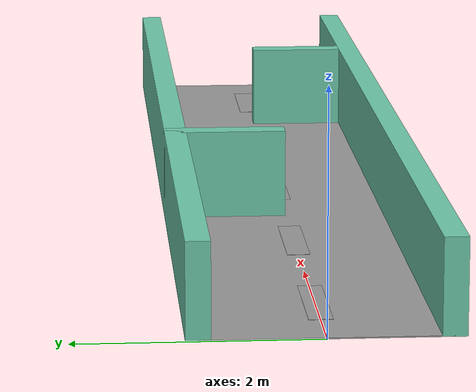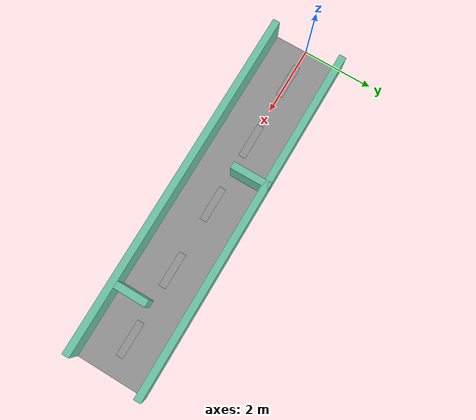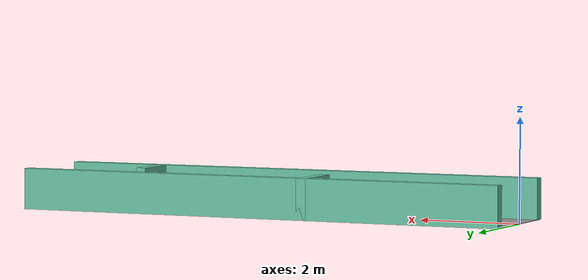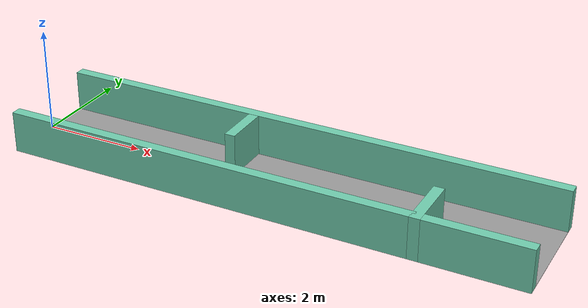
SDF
<?xml version='1.0'?>
<sdf version='1.7'>
  <model name='Race'>
    <pose>5 0 0 0 -0 0</pose>
    <link name='Wall_1'>
      <collision name='Wall_1_Collision'>
        <geometry>
          <box>
            <size>10 0.2 0.8</size>
          </box>
        </geometry>
        <pose>0 0 0.4 0 -0 0</pose>
      </collision>
      <visual name='Wall_1_Visual'>
        <pose>0 0 0.4 0 -0 0</pose>
        <geometry>
          <box>
            <size>10 0.2 0.8</size>
          </box>
        </geometry>
        <material>
          <script>
            <uri>file://media/materials/scripts/gazebo.material</uri>
            <name>Gazebo/Grey</name>
          </script>
          <ambient>0.435294 0.796078 0.67451 1</ambient>
        </material>
        <meta>
          <layer>0</layer>
        </meta>
      </visual>
      <pose>0 1 0 0 -0 0</pose>
    </link>
    <link name='Wall_11'>
      <collision name='Wall_11_Collision'>
        <geometry>
          <box>
            <size>1 0.2 0.013</size>
          </box>
        </geometry>
        <pose>0 0 0.0065 0 -0 0</pose>
      </collision>
      <visual name='Wall_11_Visual'>
        <pose>0 0 0.0065 0 -0 0</pose>
        <geometry>
          <box>
            <size>1 0.2 0.013</size>
          </box>
        </geometry>
        <material>
          <script>
            <uri>file://media/materials/scripts/gazebo.material</uri>
            <name>Gazebo/Grey</name>
          </script>
          <ambient>1 1 1 1</ambient>
        </material>
        <meta>
          <layer>0</layer>
        </meta>
      </visual>
      <pose>-4 0 0 0 -0 0</pose>
    </link>
    <link name='Wall_13'>
      <collision name='Wall_13_Collision'>
        <geometry>
          <box>
            <size>1 0.2 0.013</size>
          </box>
        </geometry>
        <pose>0 0 0.0065 0 -0 0</pose>
      </collision>
      <visual name='Wall_13_Visual'>
        <pose>0 0 0.0065 0 -0 0</pose>
        <geometry>
          <box>
            <size>1 0.2 0.013</size>
          </box>
        </geometry>
        <material>
          <script>
            <uri>file://media/materials/scripts/gazebo.material</uri>
            <name>Gazebo/Grey</name>
          </script>
          <ambient>1 1 1 1</ambient>
        </material>
        <meta>
          <layer>0</layer>
        </meta>
      </visual>
      <pose>-2 0 0 0 -0 0</pose>
    </link>
    <link name='Wall_15'>
      <collision name='Wall_15_Collision'>
        <geometry>
          <box>
            <size>1 0.2 0.013</size>
          </box>
        </geometry>
        <pose>0 0 0.0065 0 -0 0</pose>
      </collision>
      <visual name='Wall_15_Visual'>
        <pose>0 0 0.0065 0 -0 0</pose>
        <geometry>
          <box>
            <size>1 0.2 0.013</size>
          </box>
        </geometry>
        <material>
          <script>
            <uri>file://media/materials/scripts/gazebo.material</uri>
            <name>Gazebo/Grey</name>
          </script>
          <ambient>1 1 1 1</ambient>
        </material>
        <meta>
          <layer>0</layer>
        </meta>
      </visual>
      <pose>0 0 0 0 -0 0</pose>
    </link>
    <link name='Wall_17'>
      <collision name='Wall_17_Collision'>
        <geometry>
          <box>
            <size>1 0.2 0.013</size>
          </box>
        </geometry>
        <pose>0 0 0.0065 0 -0 0</pose>
      </collision>
      <visual name='Wall_17_Visual'>
        <pose>0 0 0.0065 0 -0 0</pose>
        <geometry>
          <box>
            <size>1 0.2 0.013</size>
          </box>
        </geometry>
        <material>
          <script>
            <uri>file://media/materials/scripts/gazebo.material</uri>
            <name>Gazebo/Grey</name>
          </script>
          <ambient>1 1 1 1</ambient>
        </material>
        <meta>
          <layer>0</layer>
        </meta>
      </visual>
      <pose>2 0 0 0 -0 0</pose>
    </link>
    <link name='Wall_19'>
      <collision name='Wall_19_Collision'>
        <geometry>
          <box>
            <size>1 0.2 0.013</size>
          </box>
        </geometry>
        <pose>0 0 0.0065 0 -0 0</pose>
      </collision>
      <visual name='Wall_19_Visual'>
        <pose>0 0 0.0065 0 -0 0</pose>
        <geometry>
          <box>
            <size>1 0.2 0.013</size>
          </box>
        </geometry>
        <material>
          <script>
            <uri>file://media/materials/scripts/gazebo.material</uri>
            <name>Gazebo/Grey</name>
          </script>
          <ambient>1 1 1 1</ambient>
        </material>
        <meta>
          <layer>0</layer>
        </meta>
      </visual>
      <pose>4 0 0 0 -0 0</pose>
    </link>
    <link name='Wall_3'>
      <collision name='Wall_3_Collision'>
        <geometry>
          <box>
            <size>10 0.2 0.8</size>
          </box>
        </geometry>
        <pose>0 0 0.4 0 -0 0</pose>
      </collision>
      <visual name='Wall_3_Visual'>
        <pose>0 0 0.4 0 -0 0</pose>
        <geometry>
          <box>
            <size>10 0.2 0.8</size>
          </box>
        </geometry>
        <material>
          <script>
            <uri>file://media/materials/scripts/gazebo.material</uri>
            <name>Gazebo/Grey</name>
          </script>
          <ambient>0.435294 0.796078 0.67451 1</ambient>
        </material>
        <meta>
          <layer>0</layer>
        </meta>
      </visual>
      <pose>0 -1 0 0 -0 0</pose>
    </link>
    <link name='Wall_5'>
      <collision name='Wall_5_Collision'>
        <geometry>
          <box>
            <size>1.1 0.2 0.8</size>
          </box>
        </geometry>
        <pose>0 0 0.4 0 -0 0</pose>
      </collision>
      <visual name='Wall_5_Visual'>
        <pose>0 0 0.4 0 -0 0</pose>
        <geometry>
          <box>
            <size>1.1 0.2 0.8</size>
          </box>
        </geometry>
        <material>
          <script>
            <uri>file://media/materials/scripts/gazebo.material</uri>
            <name>Gazebo/Grey</name>
          </script>
          <ambient>0.435294 0.796078 0.67451 1</ambient>
        </material>
        <meta>
          <layer>0</layer>
        </meta>
      </visual>
      <pose>-1 0.55 0 0 -0 -1.5708</pose>
    </link>
    <link name='Wall_7'>
      <collision name='Wall_7_Collision'>
        <geometry>
          <box>
            <size>1.1 0.2 0.8</size>
          </box>
        </geometry>
        <pose>0 0 0.4 0 -0 0</pose>
      </collision>
      <visual name='Wall_7_Visual'>
        <pose>0 0 0.4 0 -0 0</pose>
        <geometry>
          <box>
            <size>1.1 0.2 0.8</size>
          </box>
        </geometry>
        <material>
          <script>
            <uri>file://media/materials/scripts/gazebo.material</uri>
            <name>Gazebo/Grey</name>
          </script>
          <ambient>0.435294 0.796078 0.67451 1</ambient>
        </material>
        <meta>
          <layer>0</layer>
        </meta>
      </visual>
      <pose>3 -0.55 0 0 -0 1.5708</pose>
    </link>
    <link name='Wall_9'>
      <collision name='Wall_9_Collision'>
        <geometry>
          <box>
            <size>10 2 0.01</size>
          </box>
        </geometry>
        <pose>0 0 0.005 0 -0 0</pose>
      </collision>
      <visual name='Wall_9_Visual'>
        <pose>0 0 0.005 0 -0 0</pose>
        <geometry>
          <box>
            <size>10 2 0.01</size>
          </box>
        </geometry>
        <material>
          <script>
            <uri>file://media/materials/scripts/gazebo.material</uri>
            <name>Gazebo/Grey</name>
          </script>
          <ambient>0 0 0 1</ambient>
        </material>
        <meta>
          <layer>0</layer>
        </meta>
      </visual>
      <pose>0 0 0 0 -0 0</pose>
    </link>
    <static>1</static>
  </model>
</sdf>
